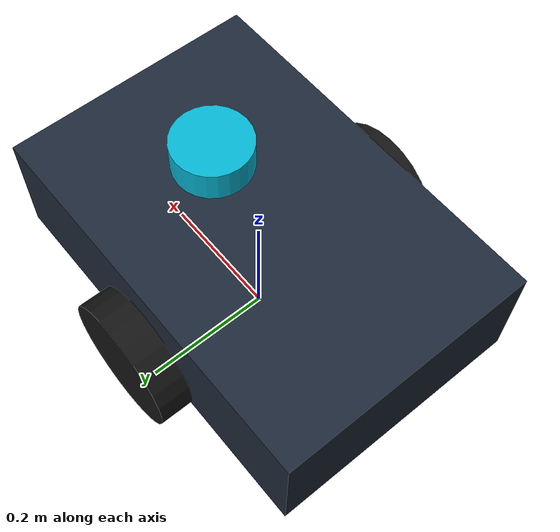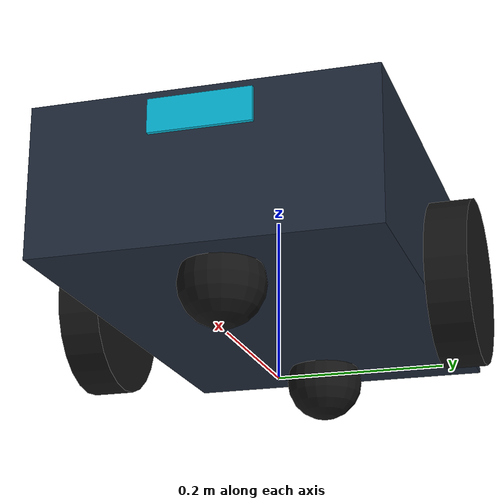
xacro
<?xml version="1.0"?>
<robot xmlns:xacro="http://www.ros.org/wiki/xacro" name="visionnav_robot">

  <!-- Materials -->
  <material name="chassis_dark"><color rgba="0.12 0.16 0.22 1.0"/></material>
  <material name="cyan_accent"><color rgba="0.02 0.71 0.83 1.0"/></material>
  <material name="wheel_rubber"><color rgba="0.08 0.08 0.08 1.0"/></material>
  <material name="lens_glass"><color rgba="0.1 0.9 0.9 0.8"/></material>

  <!-- Base footprint -->
  <link name="base_footprint"/>

  <joint name="base_joint" type="fixed">
    <parent link="base_footprint"/>
    <child link="base_link"/>
    <origin xyz="0 0 0.10" rpy="0 0 0"/>
  </joint>

  <!-- Base Link / Chassis -->
  <link name="base_link">
    <visual>
      <origin xyz="0 0 0.06" rpy="0 0 0"/>
      <geometry>
        <box size="0.60 0.40 0.18"/>
      </geometry>
      <material name="chassis_dark"/>
    </visual>
    <collision>
      <origin xyz="0 0 0.06" rpy="0 0 0"/>
      <geometry>
        <box size="0.60 0.40 0.18"/>
      </geometry>
    </collision>
    <inertial>
      <mass value="12.0"/>
      <origin xyz="0 0 0.06"/>
      <inertia ixx="0.19" ixy="0.0" ixz="0.0" iyy="0.41" iyz="0.0" izz="0.52"/>
    </inertial>
  </link>

  <!-- Left Wheel -->
  <link name="left_wheel_link">
    <visual>
      <origin xyz="0 0 0" rpy="1.57079 0 0"/>
      <geometry>
        <cylinder radius="0.10" length="0.05"/>
      </geometry>
      <material name="wheel_rubber"/>
    </visual>
    <collision>
      <origin xyz="0 0 0" rpy="1.57079 0 0"/>
      <geometry>
        <cylinder radius="0.10" length="0.05"/>
      </geometry>
    </collision>
    <inertial>
      <mass value="1.5"/>
      <inertia ixx="0.004" ixy="0" ixz="0" iyy="0.007" iyz="0" izz="0.004"/>
    </inertial>
  </link>

  <joint name="left_wheel_joint" type="continuous">
    <parent link="base_link"/>
    <child link="left_wheel_link"/>
    <origin xyz="0.0 0.225 0.0" rpy="0 0 0"/>
    <axis xyz="0 1 0"/>
  </joint>

  <!-- Right Wheel -->
  <link name="right_wheel_link">
    <visual>
      <origin xyz="0 0 0" rpy="1.57079 0 0"/>
      <geometry>
        <cylinder radius="0.10" length="0.05"/>
      </geometry>
      <material name="wheel_rubber"/>
    </visual>
    <collision>
      <origin xyz="0 0 0" rpy="1.57079 0 0"/>
      <geometry>
        <cylinder radius="0.10" length="0.05"/>
      </geometry>
    </collision>
    <inertial>
      <mass value="1.5"/>
      <inertia ixx="0.004" ixy="0" ixz="0" iyy="0.007" iyz="0" izz="0.004"/>
    </inertial>
  </link>

  <joint name="right_wheel_joint" type="continuous">
    <parent link="base_link"/>
    <child link="right_wheel_link"/>
    <origin xyz="0.0 -0.225 0.0" rpy="0 0 0"/>
    <axis xyz="0 1 0"/>
  </joint>

  <!-- Front Caster Support -->
  <link name="front_caster_link">
    <visual>
      <geometry><sphere radius="0.05"/></geometry>
      <material name="wheel_rubber"/>
    </visual>
    <collision>
      <geometry><sphere radius="0.05"/></geometry>
    </collision>
    <inertial><mass value="0.5"/><inertia ixx="0.0005" ixy="0" ixz="0" iyy="0.0005" iyz="0" izz="0.0005"/></inertial>
  </link>

  <joint name="front_caster_joint" type="fixed">
    <parent link="base_link"/>
    <child link="front_caster_link"/>
    <origin xyz="0.22 0.0 -0.05" rpy="0 0 0"/>
  </joint>

  <!-- Rear Caster Support -->
  <link name="rear_caster_link">
    <visual>
      <geometry><sphere radius="0.05"/></geometry>
      <material name="wheel_rubber"/>
    </visual>
    <collision>
      <geometry><sphere radius="0.05"/></geometry>
    </collision>
    <inertial><mass value="0.5"/><inertia ixx="0.0005" ixy="0" ixz="0" iyy="0.0005" iyz="0" izz="0.0005"/></inertial>
  </link>

  <joint name="rear_caster_joint" type="fixed">
    <parent link="base_link"/>
    <child link="rear_caster_link"/>
    <origin xyz="-0.22 0.0 -0.05" rpy="0 0 0"/>
  </joint>

  <!-- Front RGB Camera -->
  <link name="camera_link">
    <visual>
      <geometry><box size="0.05 0.12 0.04"/></geometry>
      <material name="cyan_accent"/>
    </visual>
  </link>

  <joint name="camera_joint" type="fixed">
    <parent link="base_link"/>
    <child link="camera_link"/>
    <origin xyz="0.28 0.0 0.12" rpy="0 0 0"/>
  </joint>

  <!-- 2D/3D LiDAR Turret -->
  <link name="laser_link">
    <visual>
      <geometry><cylinder radius="0.06" length="0.05"/></geometry>
      <material name="cyan_accent"/>
    </visual>
  </link>

  <joint name="laser_joint" type="fixed">
    <parent link="base_link"/>
    <child link="laser_link"/>
    <origin xyz="0.10 0.0 0.18" rpy="0 0 0"/>
  </joint>

  <!-- IMU -->
  <link name="imu_link"/>
  <joint name="imu_joint" type="fixed">
    <parent link="base_link"/>
    <child link="imu_link"/>
    <origin xyz="0 0 0.05" rpy="0 0 0"/>
  </joint>

</robot>
